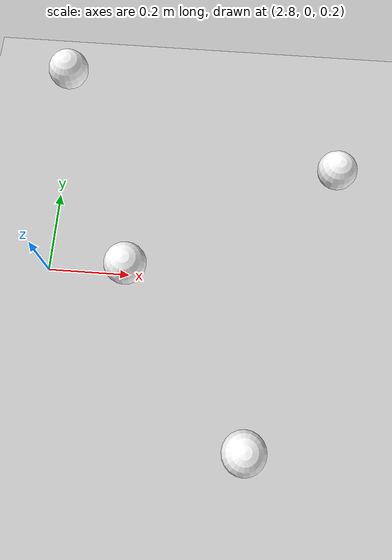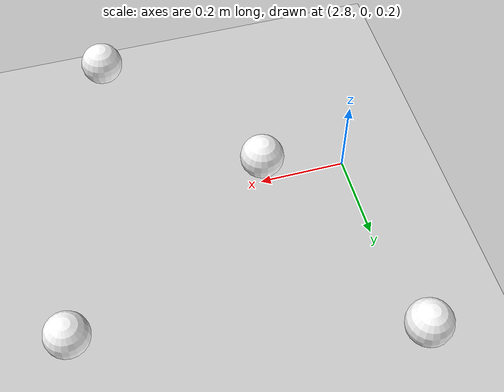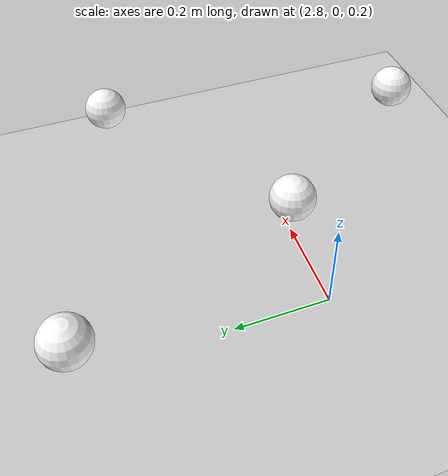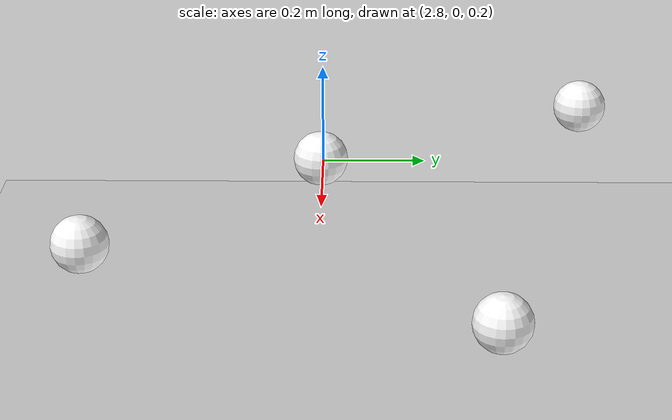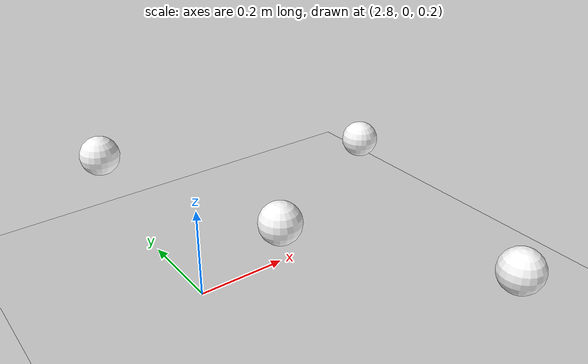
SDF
<?xml version="1.0" ?>
<!--
Default Gazebo World for MG6010 Robot Testing
Simple environment with ground plane and basic lighting
-->
<sdf version="1.9">
  <world name="default">

    <!-- Physics Engine -->
    <physics name="1ms" type="ignored">
      <max_step_size>0.001</max_step_size>
      <real_time_factor>1.0</real_time_factor>
    </physics>

    <!-- Plugins -->
    <plugin filename="gz-sim-physics-system" name="gz::sim::systems::Physics">
    </plugin>
    <plugin filename="gz-sim-user-commands-system" name="gz::sim::systems::UserCommands">
    </plugin>
    <plugin filename="gz-sim-scene-broadcaster-system" name="gz::sim::systems::SceneBroadcaster">
    </plugin>
    <plugin filename="gz-sim-sensors-system" name="gz::sim::systems::Sensors">
      <render_engine>ogre2</render_engine>
    </plugin>

    <!-- GUI -->
    <gui fullscreen="0">
      <!-- 3D View - Using MinimalScene (Garden+) -->
      <plugin filename="MinimalScene" name="3D View">
        <gz-gui>
          <title>3D View</title>
          <property type="bool" key="showTitleBar">false</property>
          <property type="string" key="state">docked</property>
        </gz-gui>
        <engine>ogre2</engine>
        <scene>scene</scene>
        <ambient_light>0.6 0.6 0.6</ambient_light>
        <background_color>0.4 0.6 0.8</background_color>
        <camera_pose>2 -3 2 0 0.5 2.0</camera_pose>
        <camera_clip>
          <near>0.1</near>
          <far>1000</far>
        </camera_clip>
      </plugin>

      <!-- Scene Manager Required for MinimalScene -->
      <plugin filename="GzSceneManager" name="Scene Manager">
        <gz-gui>
          <property type="bool" key="showTitleBar">false</property>
          <property type="string" key="state">floating</property>
          <property type="double" key="width">5</property>
          <property type="double" key="height">5</property>
          <property type="double" key="x">0</property>
          <property type="double" key="y">0</property>
        </gz-gui>
      </plugin>

      <!-- Interactive View Control - ORBIT, PAN, ZOOM with mouse -->
      <plugin filename="InteractiveViewControl" name="Interactive view control">
        <gz-gui>
          <property type="bool" key="showTitleBar">false</property>
          <property type="string" key="state">floating</property>
          <property type="double" key="width">5</property>
          <property type="double" key="height">5</property>
          <property type="double" key="x">0</property>
          <property type="double" key="y">0</property>
        </gz-gui>
      </plugin>

      <!-- Camera Tracking -->
      <plugin filename="CameraTracking" name="Camera tracking">
        <gz-gui>
          <property type="bool" key="showTitleBar">false</property>
          <property type="string" key="state">floating</property>
          <property type="double" key="width">5</property>
          <property type="double" key="height">5</property>
          <property type="double" key="x">0</property>
          <property type="double" key="y">0</property>
        </gz-gui>
      </plugin>

      <!-- Transform Control - Move/Rotate/Scale entities -->
      <plugin filename="TransformControl" name="Transform control">
        <gz-gui>
          <title>Transform Control</title>
          <property type="bool" key="showTitleBar">false</property>
          <property type="bool" key="resizable">false</property>
          <property type="double" key="height">40</property>
          <property type="double" key="width">250</property>
          <property type="double" key="z">1</property>
          <property type="string" key="state">floating</property>
          <anchors target="3D View">
            <line own="left" target="left"/>
            <line own="top" target="top"/>
          </anchors>
        </gz-gui>
      </plugin>

      <!-- View Angle - Quick preset views (Front, Back, Top, etc.) -->
      <plugin filename="ViewAngle" name="View angle">
        <gz-gui>
          <title>View Angle</title>
          <property type="bool" key="showTitleBar">true</property>
          <property type="bool" key="resizable">true</property>
          <property type="double" key="height">350</property>
          <property type="double" key="width">200</property>
          <property type="double" key="z">1</property>
          <property type="string" key="state">floating</property>
          <anchors target="3D View">
            <line own="right" target="right"/>
            <line own="top" target="top"/>
          </anchors>
        </gz-gui>
        <!-- Camera pose format: x y z roll pitch yaw -->
        <home_pose>2 -3 2 0 0.5 2.0</home_pose>
      </plugin>

      <!-- World Control -->
      <plugin filename="WorldControl" name="World control">
        <gz-gui>
          <title>World control</title>
          <property type="bool" key="showTitleBar">false</property>
          <property type="bool" key="resizable">false</property>
          <property type="double" key="height">72</property>
          <property type="double" key="width">150</property>
          <property type="double" key="z">1</property>
          <property type="string" key="state">floating</property>
          <anchors target="3D View">
            <line own="left" target="left"/>
            <line own="bottom" target="bottom"/>
          </anchors>
        </gz-gui>
        <play_pause>true</play_pause>
        <step>true</step>
        <start_paused>false</start_paused>
      </plugin>

      <!-- World Stats -->
      <plugin filename="WorldStats" name="World stats">
        <gz-gui>
          <title>World stats</title>
          <property type="bool" key="showTitleBar">false</property>
          <property type="bool" key="resizable">false</property>
          <property type="double" key="height">110</property>
          <property type="double" key="width">290</property>
          <property type="double" key="z">1</property>
          <property type="string" key="state">floating</property>
          <anchors target="3D View">
            <line own="right" target="right"/>
            <line own="bottom" target="bottom"/>
          </anchors>
        </gz-gui>
        <sim_time>true</sim_time>
        <real_time>true</real_time>
        <real_time_factor>true</real_time_factor>
        <iterations>true</iterations>
      </plugin>

      <!-- Entity Tree - Shows all entities in the scene -->
      <plugin filename="EntityTree" name="Entity tree">
        <gz-gui>
          <title>Entity Tree</title>
          <property type="bool" key="showTitleBar">true</property>
          <property type="string" key="state">docked</property>
        </gz-gui>
      </plugin>

      <!-- Component Inspector -->
      <plugin filename="ComponentInspector" name="Component inspector">
        <gz-gui>
          <title>Component Inspector</title>
          <property type="bool" key="showTitleBar">true</property>
          <property type="string" key="state">docked</property>
        </gz-gui>
      </plugin>

      <!-- Visualization Capabilities - Collision/Joint/Frame visualization -->
      <plugin filename="VisualizationCapabilities" name="Visualization capabilities">
        <gz-gui>
          <property type="bool" key="showTitleBar">false</property>
          <property type="string" key="state">floating</property>
          <property type="double" key="width">5</property>
          <property type="double" key="height">5</property>
          <property type="double" key="x">0</property>
          <property type="double" key="y">0</property>
        </gz-gui>
      </plugin>
    </gui>

    <!-- Lighting -->
    <light type="directional" name="sun">
      <cast_shadows>true</cast_shadows>
      <pose>0 0 10 0 0 0</pose>
      <diffuse>0.8 0.8 0.8 1</diffuse>
      <specular>0.2 0.2 0.2 1</specular>
      <attenuation>
        <range>1000</range>
        <constant>0.9</constant>
        <linear>0.01</linear>
        <quadratic>0.001</quadratic>
      </attenuation>
      <direction>-0.5 0.1 -0.9</direction>
    </light>

    <!-- Ground Plane -->
    <model name="ground_plane">
      <static>true</static>
      <link name="link">
        <collision name="collision">
          <geometry>
            <plane>
              <normal>0 0 1</normal>
              <size>100 100</size>
            </plane>
          </geometry>
        </collision>
        <visual name="visual">
          <geometry>
            <plane>
              <normal>0 0 1</normal>
              <size>100 100</size>
            </plane>
          </geometry>
          <material>
            <ambient>0.8 0.8 0.8 1</ambient>
            <diffuse>0.8 0.8 0.8 1</diffuse>
            <specular>0.8 0.8 0.8 1</specular>
          </material>
        </visual>
      </link>
    </model>

    <!-- Cotton Field Simulation (Optional) -->
    <!-- A simple grid of cotton plants represented by spheres -->
    <model name="cotton_field">
      <static>true</static>
      <pose>3 0 0 0 0 0</pose>

      <!-- Cotton Plant 1 -->
      <link name="cotton_1">
        <pose>0 0 0.3 0 0 0</pose>
        <visual name="visual">
          <geometry>
            <sphere>
              <radius>0.05</radius>
            </sphere>
          </geometry>
          <material>
            <ambient>1 1 1 1</ambient>
            <diffuse>1 1 1 1</diffuse>
          </material>
        </visual>
        <collision name="collision">
          <geometry>
            <sphere>
              <radius>0.05</radius>
            </sphere>
          </geometry>
        </collision>
      </link>

      <!-- Cotton Plant 2 -->
      <link name="cotton_2">
        <pose>0.5 0.3 0.25 0 0 0</pose>
        <visual name="visual">
          <geometry>
            <sphere>
              <radius>0.05</radius>
            </sphere>
          </geometry>
          <material>
            <ambient>1 1 1 1</ambient>
            <diffuse>1 1 1 1</diffuse>
          </material>
        </visual>
        <collision name="collision">
          <geometry>
            <sphere>
              <radius>0.05</radius>
            </sphere>
          </geometry>
        </collision>
      </link>

      <!-- Cotton Plant 3 -->
      <link name="cotton_3">
        <pose>0.3 -0.4 0.28 0 0 0</pose>
        <visual name="visual">
          <geometry>
            <sphere>
              <radius>0.05</radius>
            </sphere>
          </geometry>
          <material>
            <ambient>1 1 1 1</ambient>
            <diffuse>1 1 1 1</diffuse>
          </material>
        </visual>
        <collision name="collision">
          <geometry>
            <sphere>
              <radius>0.05</radius>
            </sphere>
          </geometry>
        </collision>
      </link>

      <!-- Cotton Plant 4 -->
      <link name="cotton_4">
        <pose>-0.2 0.5 0.32 0 0 0</pose>
        <visual name="visual">
          <geometry>
            <sphere>
              <radius>0.05</radius>
            </sphere>
          </geometry>
          <material>
            <ambient>1 1 1 1</ambient>
            <diffuse>1 1 1 1</diffuse>
          </material>
        </visual>
        <collision name="collision">
          <geometry>
            <sphere>
              <radius>0.05</radius>
            </sphere>
          </geometry>
        </collision>
      </link>
    </model>

  </world>
</sdf>
